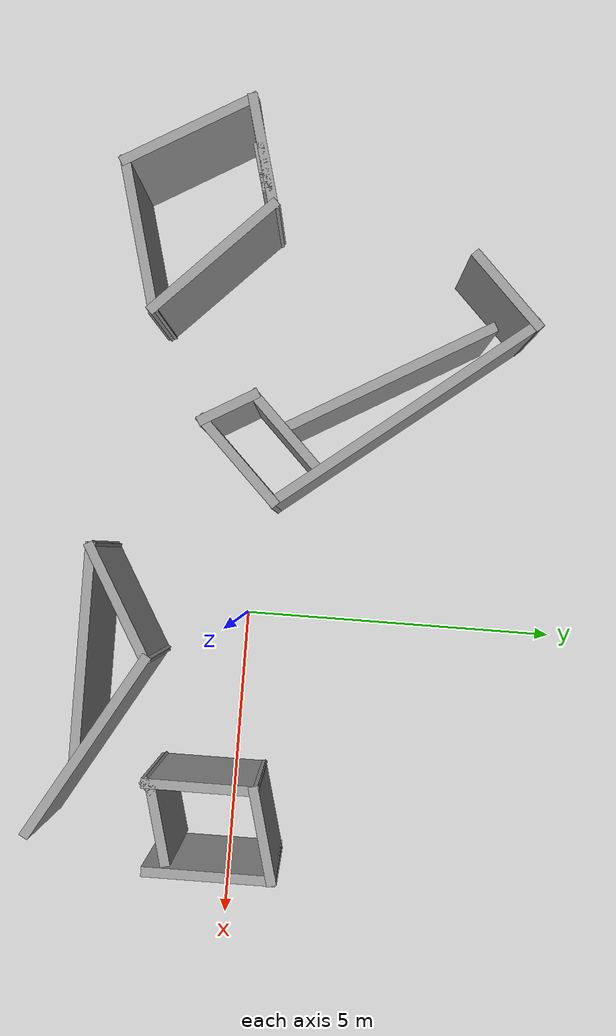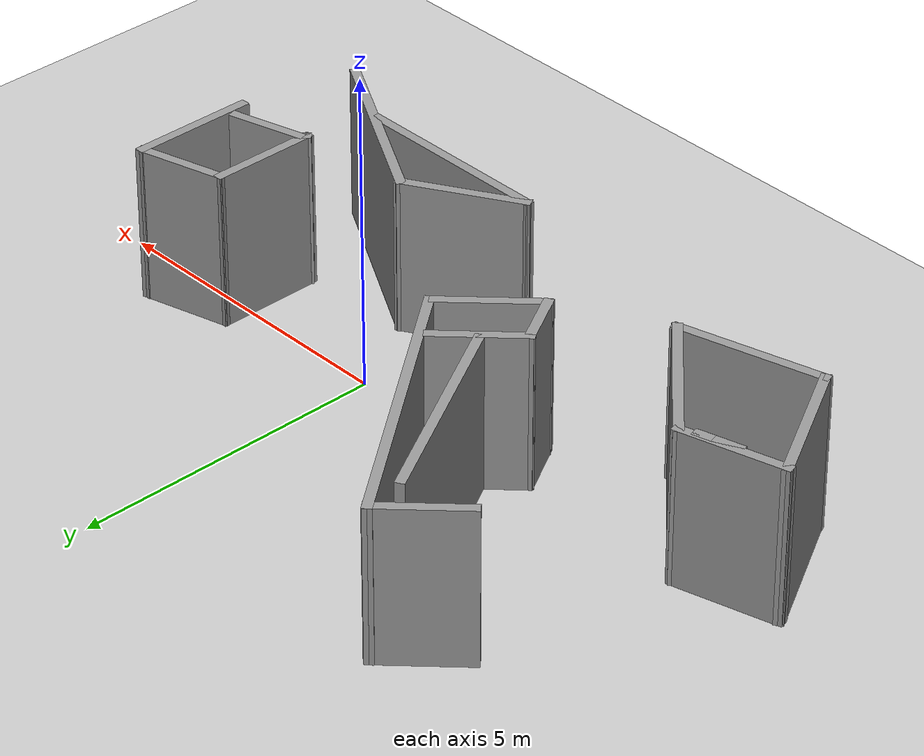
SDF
<sdf version="1.7">
 <world name="default">
  <model name="ground_plane">
   <static>1</static>
   <link name="link">
    <collision name="collision">
     <geometry><plane><normal>0 0 1</normal><size>100 100</size></plane></geometry>
     <surface><friction><ode><mu>100</mu><mu2>50</mu2></ode></friction></surface>
    </collision>
    <visual name="visual">
     <cast_shadows>0</cast_shadows>
     <geometry><plane><normal>0 0 1</normal><size>100 100</size></plane></geometry>
     <material>
      <script><uri>file://media/materials/scripts/gazebo.material</uri><name>Gazebo/Grey</name></script>
     </material>
    </visual>
   </link>
  </model>
  <model name="Untitled_3">
   <pose>-1.94464 0.606467 0 0 -0 0</pose>
   <link name="Wall_19">
    <collision name="Wall_19_Collision">
     <geometry><box><size>1.5 0.15 2.5</size></box></geometry>
     <pose>0 0 1.25 0 -0 0</pose>
    </collision>
    <visual name="Wall_19_Visual">
     <pose>0 0 1.25 0 -0 0</pose>
     <geometry><box><size>1.5 0.15 2.5</size></box></geometry>
     <material>
      <script><uri>file://media/materials/scripts/gazebo.material</uri><name>Gazebo/Grey</name></script>
      <ambient>1 1 1 1</ambient>
     </material>
     <meta><layer>0</layer></meta>
    </visual>
    <pose>5.11912 0.001474 0 0 -0 -2.87979</pose>
   </link>
   <link name="Wall_21">
    <collision name="Wall_21_Collision">
     <geometry><box><size>1.75 0.15 2.5</size></box></geometry>
     <pose>0 0 1.25 0 -0 0</pose>
    </collision>
    <visual name="Wall_21_Visual">
     <pose>0 0 1.25 0 -0 0</pose>
     <geometry><box><size>1.75 0.15 2.5</size></box></geometry>
     <material>
      <script><uri>file://media/materials/scripts/gazebo.material</uri><name>Gazebo/Grey</name></script>
      <ambient>1 1 1 1</ambient>
     </material>
     <meta><layer>0</layer></meta>
    </visual>
    <pose>4.46712 -0.973229 0 0 -0 -1.5708</pose>
   </link>
   <link name="Wall_24">
    <collision name="Wall_24_Collision">
     <geometry><box><size>0.253645 0.15 2.5</size></box></geometry>
     <pose>0 0 1.25 0 -0 0</pose>
    </collision>
    <visual name="Wall_24_Visual">
     <pose>0 0 1.25 0 -0 0</pose>
     <geometry><box><size>0.253645 0.15 2.5</size></box></geometry>
     <material>
      <script><uri>file://media/materials/scripts/gazebo.material</uri><name>Gazebo/Grey</name></script>
      <ambient>1 1 1 1</ambient>
     </material>
     <meta><layer>0</layer></meta>
    </visual>
    <pose>4.50312 -1.73596 0 0 -0 0.802576</pose>
   </link>
   <link name="Wall_25">
    <collision name="Wall_25_Collision">
     <geometry><box><size>1.25 0.15 2.5</size></box></geometry>
     <pose>0 0 1.25 0 -0 0</pose>
    </collision>
    <visual name="Wall_25_Visual">
     <pose>0 0 1.25 0 -0 0</pose>
     <geometry><box><size>1.25 0.15 2.5</size></box></geometry>
     <material>
      <script><uri>file://media/materials/scripts/gazebo.material</uri><name>Gazebo/Grey</name></script>
      <ambient>1 1 1 1</ambient>
     </material>
     <meta><layer>0</layer></meta>
    </visual>
    <pose>5.07039 -1.55634 0 0 -0 0.261799</pose>
   </link>
   <link name="Wall_27">
    <collision name="Wall_27_Collision">
     <geometry><box><size>2 0.15 2.5</size></box></geometry>
     <pose>0 0 1.25 0 -0 0</pose>
    </collision>
    <visual name="Wall_27_Visual">
     <pose>0 0 1.25 0 -0 0</pose>
     <geometry><box><size>2 0.15 2.5</size></box></geometry>
     <material>
      <script><uri>file://media/materials/scripts/gazebo.material</uri><name>Gazebo/Grey</name></script>
      <ambient>1 1 1 1</ambient>
     </material>
     <meta><layer>0</layer></meta>
    </visual>
    <pose>5.77112 -0.748823 0 0 -0 -1.5708</pose>
   </link>
   <link name="Wall_31">
    <collision name="Wall_31_Collision">
     <geometry><box><size>3.25 0.15 2.5</size></box></geometry>
     <pose>0 0 1.25 0 -0 0</pose>
    </collision>
    <visual name="Wall_31_Visual">
     <pose>0 0 1.25 0 -0 0</pose>
     <geometry><box><size>3.25 0.15 2.5</size></box></geometry>
     <material>
      <script><uri>file://media/materials/scripts/gazebo.material</uri><name>Gazebo/Grey</name></script>
      <ambient>1 1 1 1</ambient>
     </material>
     <meta><layer>0</layer></meta>
    </visual>
    <pose>3.99115 -2.71266 0 0 -0 2.61799</pose>
   </link>
   <link name="Wall_33">
    <collision name="Wall_33_Collision">
     <geometry><box><size>2 0.15 2.5</size></box></geometry>
     <pose>0 0 1.25 0 -0 0</pose>
    </collision>
    <visual name="Wall_33_Visual">
     <pose>0 0 1.25 0 -0 0</pose>
     <geometry><box><size>2 0.15 2.5</size></box></geometry>
     <material>
      <script><uri>file://media/materials/scripts/gazebo.material</uri><name>Gazebo/Grey</name></script>
      <ambient>1 1 1 1</ambient>
     </material>
     <meta><layer>0</layer></meta>
    </visual>
    <pose>1.84774 -2.40016 0 0 -0 -2.61799</pose>
   </link>
   <link name="Wall_34">
    <collision name="Wall_34_Collision">
     <geometry><box><size>3.25 0.15 2.5</size></box></geometry>
     <pose>0 0 1.25 0 -0 0</pose>
    </collision>
    <visual name="Wall_34_Visual">
     <pose>0 0 1.25 0 -0 0</pose>
     <geometry><box><size>3.25 0.15 2.5</size></box></geometry>
     <material>
      <script><uri>file://media/materials/scripts/gazebo.material</uri><name>Gazebo/Grey</name></script>
      <ambient>1 1 1 1</ambient>
     </material>
     <meta><layer>0</layer></meta>
    </visual>
    <pose>2.59666 -2.86266 0 0 -0 0</pose>
   </link>
   <link name="Wall_41">
    <collision name="Wall_41_Collision">
     <geometry><box><size>2.5 0.15 2.5</size></box></geometry>
     <pose>0 0 1.25 0 -0 0</pose>
    </collision>
    <visual name="Wall_41_Visual">
     <pose>0 0 1.25 0 -0 0</pose>
     <geometry><box><size>2.5 0.15 2.5</size></box></geometry>
     <material>
      <script><uri>file://media/materials/scripts/gazebo.material</uri><name>Gazebo/Grey</name></script>
      <ambient>1 1 1 1</ambient>
     </material>
     <meta><layer>0</layer></meta>
    </visual>
    <pose>-3.38419 -1.38181 0 0 -0 2.35619</pose>
   </link>
   <link name="Wall_42">
    <collision name="Wall_42_Collision">
     <geometry><box><size>1.75 0.15 2.5</size></box></geometry>
     <pose>0 0 1.25 0 -0 0</pose>
    </collision>
    <visual name="Wall_42_Visual">
     <pose>0 0 1.25 0 -0 0</pose>
     <geometry><box><size>1.75 0.15 2.5</size></box></geometry>
     <material>
      <script><uri>file://media/materials/scripts/gazebo.material</uri><name>Gazebo/Grey</name></script>
      <ambient>1 1 1 1</ambient>
     </material>
     <meta><layer>0</layer></meta>
    </visual>
    <pose>-4.98778 -0.758017 0 0 -0 -2.87979</pose>
   </link>
   <link name="Wall_44">
    <collision name="Wall_44_Collision">
     <geometry><box><size>2.25 0.15 2.5</size></box></geometry>
     <pose>0 0 1.25 0 -0 0</pose>
    </collision>
    <visual name="Wall_44_Visual">
     <pose>0 0 1.25 0 -0 0</pose>
     <geometry><box><size>2.25 0.15 2.5</size></box></geometry>
     <material>
      <script><uri>file://media/materials/scripts/gazebo.material</uri><name>Gazebo/Grey</name></script>
      <ambient>1 1 1 1</ambient>
     </material>
     <meta><layer>0</layer></meta>
    </visual>
    <pose>-5.23552 -1.8744 0 0 -0 -1.0472</pose>
   </link>
   <link name="Wall_45">
    <collision name="Wall_45_Collision">
     <geometry><box><size>2.38149 0.15 2.5</size></box></geometry>
     <pose>0 0 1.25 0 -0 0</pose>
    </collision>
    <visual name="Wall_45_Visual">
     <pose>0 0 1.25 0 -0 0</pose>
     <geometry><box><size>2.38149 0.15 2.5</size></box></geometry>
     <material>
      <script><uri>file://media/materials/scripts/gazebo.material</uri><name>Gazebo/Grey</name></script>
      <ambient>1 1 1 1</ambient>
     </material>
     <meta><layer>0</layer></meta>
    </visual>
    <pose>-3.63193 -2.49819 0 0 -0 0.25879</pose>
   </link>
   <link name="Wall_47">
    <collision name="Wall_47_Collision">
     <geometry><box><size>0.3 0.15 2.5</size></box></geometry>
     <pose>0 0 1.25 0 -0 0</pose>
    </collision>
    <visual name="Wall_47_Visual">
     <pose>0 0 1.25 0 -0 0</pose>
     <geometry><box><size>0.3 0.15 2.5</size></box></geometry>
     <material>
      <script><uri>file://media/materials/scripts/gazebo.material</uri><name>Gazebo/Grey</name></script>
      <ambient>1 1 1 1</ambient>
     </material>
     <meta><layer>0</layer></meta>
    </visual>
    <pose>-4.53501 -0.684665 0 0 -0 0.261799</pose>
   </link>
   <link name="Wall_48">
    <collision name="Wall_48_Collision">
     <geometry><box><size>0.75 0.15 2.5</size></box></geometry>
     <pose>0 0 1.25 0 -0 0</pose>
    </collision>
    <visual name="Wall_48_Visual">
     <pose>0 0 1.25 0 -0 0</pose>
     <geometry><box><size>0.75 0.15 2.5</size></box></geometry>
     <material>
      <script><uri>file://media/materials/scripts/gazebo.material</uri><name>Gazebo/Grey</name></script>
      <ambient>1 1 1 1</ambient>
     </material>
     <meta><layer>0</layer></meta>
    </visual>
    <pose>-4.75234 -0.7429 0 0 -0 -2.87979</pose>
   </link>
   <link name="Wall_52">
    <collision name="Wall_52_Collision">
     <geometry><box><size>1.5 0.15 2.5</size></box></geometry>
     <pose>0 0 1.25 0 -0 0</pose>
    </collision>
    <visual name="Wall_52_Visual">
     <pose>0 0 1.25 0 -0 0</pose>
     <geometry><box><size>1.5 0.15 2.5</size></box></geometry>
     <material>
      <script><uri>file://media/materials/scripts/gazebo.material</uri><name>Gazebo/Grey</name></script>
      <ambient>1 1 1 1</ambient>
     </material>
     <meta><layer>0</layer></meta>
    </visual>
    <pose>-3.21483 3.00675 0 0 -0 0.785398</pose>
   </link>
   <link name="Wall_61">
    <collision name="Wall_61_Collision">
     <geometry><box><size>1 0.15 2.5</size></box></geometry>
     <pose>0 0 1.25 0 -0 0</pose>
    </collision>
    <visual name="Wall_61_Visual">
     <pose>0 0 1.25 0 -0 0</pose>
     <geometry><box><size>1 0.15 2.5</size></box></geometry>
     <material>
      <script><uri>file://media/materials/scripts/gazebo.material</uri><name>Gazebo/Grey</name></script>
      <ambient>1 1 1 1</ambient>
     </material>
     <meta><layer>0</layer></meta>
    </visual>
    <pose>-1.17503 -0.984012 0 0 -0 -1.0472</pose>
   </link>
   <link name="Wall_62">
    <collision name="Wall_62_Collision">
     <geometry><box><size>1.75 0.15 2.5</size></box></geometry>
     <pose>0 0 1.25 0 -0 0</pose>
    </collision>
    <visual name="Wall_62_Visual">
     <pose>0 0 1.25 0 -0 0</pose>
     <geometry><box><size>1.75 0.15 2.5</size></box></geometry>
     <material>
      <script><uri>file://media/materials/scripts/gazebo.material</uri><name>Gazebo/Grey</name></script>
      <ambient>1 1 1 1</ambient>
     </material>
     <meta><layer>0</layer></meta>
    </visual>
    <pose>-0.396843 -0.786387 0 0 -0 0.785398</pose>
   </link>
   <link name="Wall_63">
    <collision name="Wall_63_Collision">
     <geometry><box><size>4.85873 0.15 2.5</size></box></geometry>
     <pose>0 0 1.25 0 -0 0</pose>
    </collision>
    <visual name="Wall_63_Visual">
     <pose>0 0 1.25 0 -0 0</pose>
     <geometry><box><size>4.85873 0.15 2.5</size></box></geometry>
     <material>
      <script><uri>file://media/materials/scripts/gazebo.material</uri><name>Gazebo/Grey</name></script>
      <ambient>1 1 1 1</ambient>
     </material>
     <meta><layer>0</layer></meta>
    </visual>
    <pose>-1.28434 1.63167 0 0 -0 2.23601</pose>
   </link>
   <link name="Wall_65">
    <collision name="Wall_65_Collision">
     <geometry><box><size>1.5 0.15 2.5</size></box></geometry>
     <pose>0 0 1.25 0 -0 0</pose>
    </collision>
    <visual name="Wall_65_Visual">
     <pose>0 0 1.25 0 -0 0</pose>
     <geometry><box><size>1.5 0.15 2.5</size></box></geometry>
     <material>
      <script><uri>file://media/materials/scripts/gazebo.material</uri><name>Gazebo/Grey</name></script>
      <ambient>1 1 1 1</ambient>
     </material>
     <meta><layer>0</layer></meta>
    </visual>
    <pose>-0.910231 -0.138654 0 0 -0 0.785398</pose>
   </link>
   <link name="Wall_69">
    <collision name="Wall_69_Collision">
     <geometry><box><size>3.5 0.15 2.5</size></box></geometry>
     <pose>0 0 1.25 0 -0 0</pose>
    </collision>
    <visual name="Wall_69_Visual">
     <pose>0 0 1.25 0 -0 0</pose>
     <geometry><box><size>3.5 0.15 2.5</size></box></geometry>
     <material>
      <script><uri>file://media/materials/scripts/gazebo.material</uri><name>Gazebo/Grey</name></script>
      <ambient>1 1 1 1</ambient>
     </material>
     <meta><layer>0</layer></meta>
    </visual>
    <pose>-1.7921 1.36356 0 0 -0 -1.0472</pose>
   </link>
   <static>1</static>
  </model>
 </world>
</sdf>
